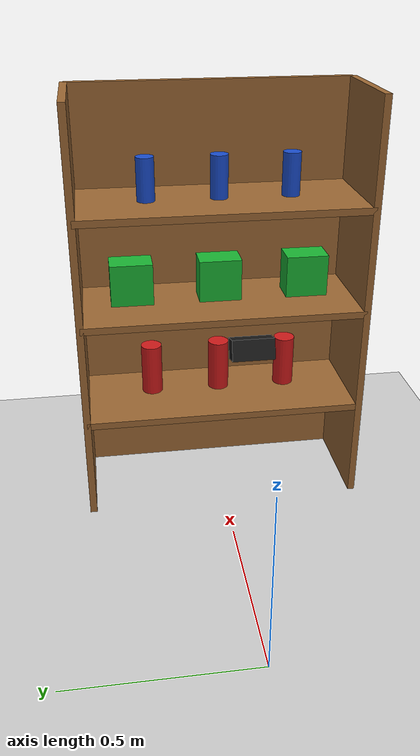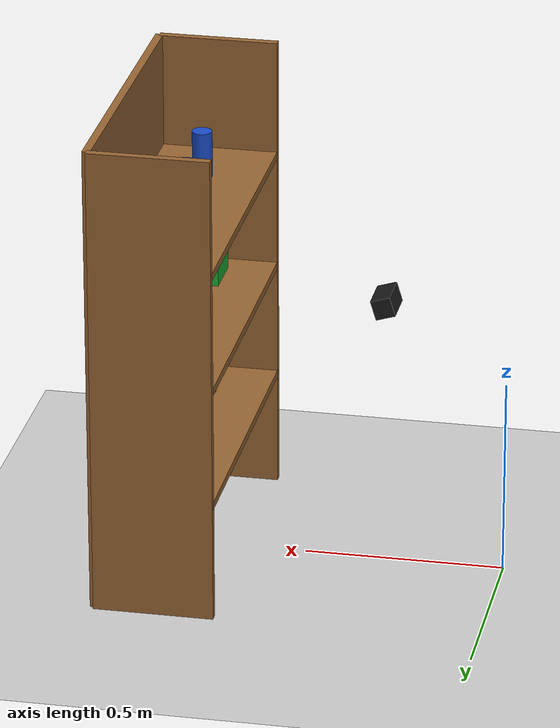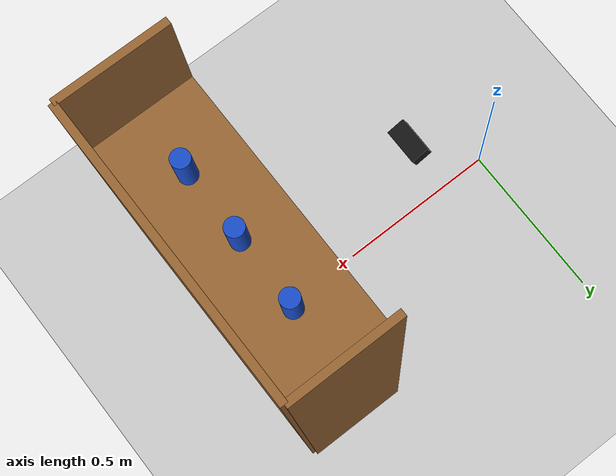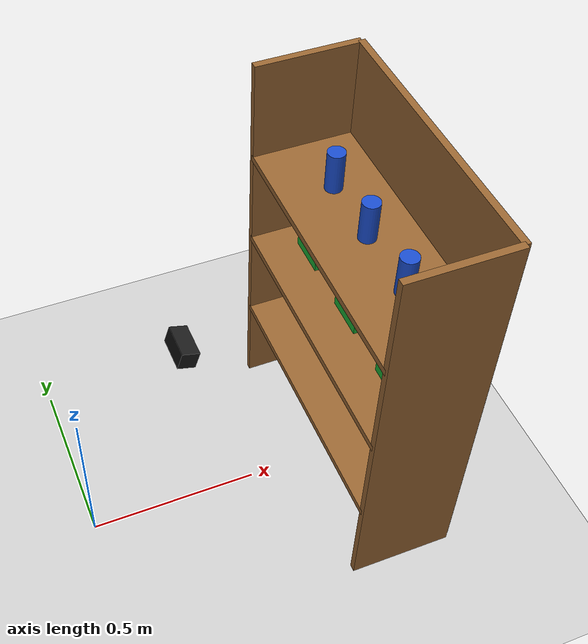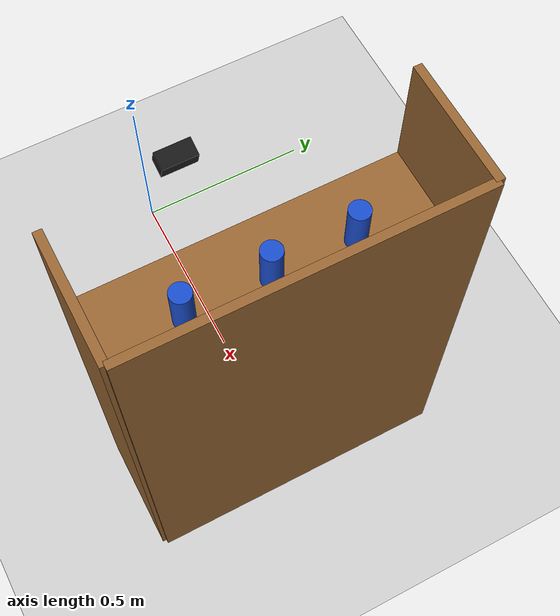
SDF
<?xml version="1.0" ?>
<sdf version="1.6">
  <world name="shelf_world">

    <!-- Lighting -->
    <include>
      <uri>model://sun</uri>
    </include>

    <!-- Ground plane -->
    <include>
      <uri>model://ground_plane</uri>
    </include>

    <!-- Shelf structure -->
    <model name="shelf">
      <static>true</static>
      <pose>0.8 0 0 0 0 0</pose>

      <!-- Back panel -->
      <link name="back_panel">
        <pose>0.15 0 0.6 0 0 0</pose>
        <visual name="visual">
          <geometry>
            <box><size>0.02 0.8 1.2</size></box>
          </geometry>
          <material>
            <ambient>0.6 0.4 0.2 1</ambient>
            <diffuse>0.6 0.4 0.2 1</diffuse>
          </material>
        </visual>
        <collision name="collision">
          <geometry>
            <box><size>0.02 0.8 1.2</size></box>
          </geometry>
        </collision>
      </link>

      <!-- Bottom shelf -->
      <link name="shelf_bottom">
        <pose>0 0 0.3 0 0 0</pose>
        <visual name="visual">
          <geometry>
            <box><size>0.3 0.8 0.02</size></box>
          </geometry>
          <material>
            <ambient>0.6 0.4 0.2 1</ambient>
            <diffuse>0.6 0.4 0.2 1</diffuse>
          </material>
        </visual>
        <collision name="collision">
          <geometry>
            <box><size>0.3 0.8 0.02</size></box>
          </geometry>
        </collision>
      </link>

      <!-- Middle shelf -->
      <link name="shelf_middle">
        <pose>0 0 0.6 0 0 0</pose>
        <visual name="visual">
          <geometry>
            <box><size>0.3 0.8 0.02</size></box>
          </geometry>
          <material>
            <ambient>0.6 0.4 0.2 1</ambient>
            <diffuse>0.6 0.4 0.2 1</diffuse>
          </material>
        </visual>
        <collision name="collision">
          <geometry>
            <box><size>0.3 0.8 0.02</size></box>
          </geometry>
        </collision>
      </link>

      <!-- Top shelf -->
      <link name="shelf_top">
        <pose>0 0 0.9 0 0 0</pose>
        <visual name="visual">
          <geometry>
            <box><size>0.3 0.8 0.02</size></box>
          </geometry>
          <material>
            <ambient>0.6 0.4 0.2 1</ambient>
            <diffuse>0.6 0.4 0.2 1</diffuse>
          </material>
        </visual>
        <collision name="collision">
          <geometry>
            <box><size>0.3 0.8 0.02</size></box>
          </geometry>
        </collision>
      </link>

      <!-- Left side panel -->
      <link name="left_panel">
        <pose>0 -0.4 0.6 0 0 0</pose>
        <visual name="visual">
          <geometry>
            <box><size>0.3 0.02 1.2</size></box>
          </geometry>
          <material>
            <ambient>0.6 0.4 0.2 1</ambient>
            <diffuse>0.6 0.4 0.2 1</diffuse>
          </material>
        </visual>
        <collision name="collision">
          <geometry>
            <box><size>0.3 0.02 1.2</size></box>
          </geometry>
        </collision>
      </link>

      <!-- Right side panel -->
      <link name="right_panel">
        <pose>0 0.4 0.6 0 0 0</pose>
        <visual name="visual">
          <geometry>
            <box><size>0.3 0.02 1.2</size></box>
          </geometry>
          <material>
            <ambient>0.6 0.4 0.2 1</ambient>
            <diffuse>0.6 0.4 0.2 1</diffuse>
          </material>
        </visual>
        <collision name="collision">
          <geometry>
            <box><size>0.3 0.02 1.2</size></box>
          </geometry>
        </collision>
      </link>
    </model>

    <!-- Products on bottom shelf (red bottles) -->
    <model name="bottle_red_1">
      <pose>0.8 -0.2 0.4 0 0 0</pose>
      <static>false</static>
      <link name="link">
        <inertial>
          <mass>0.3</mass>
          <inertia>
            <ixx>0.0005</ixx><iyy>0.0005</iyy><izz>0.0002</izz>
            <ixy>0</ixy><ixz>0</ixz><iyz>0</iyz>
          </inertia>
        </inertial>
        <visual name="visual">
          <geometry>
            <cylinder><radius>0.03</radius><length>0.15</length></cylinder>
          </geometry>
          <material>
            <ambient>0.8 0.1 0.1 1</ambient>
            <diffuse>0.8 0.1 0.1 1</diffuse>
          </material>
        </visual>
        <collision name="collision">
          <geometry>
            <cylinder><radius>0.03</radius><length>0.15</length></cylinder>
          </geometry>
        </collision>
      </link>
    </model>

    <model name="bottle_red_2">
      <pose>0.8 0 0.4 0 0 0</pose>
      <static>false</static>
      <link name="link">
        <inertial>
          <mass>0.3</mass>
          <inertia>
            <ixx>0.0005</ixx><iyy>0.0005</iyy><izz>0.0002</izz>
            <ixy>0</ixy><ixz>0</ixz><iyz>0</iyz>
          </inertia>
        </inertial>
        <visual name="visual">
          <geometry>
            <cylinder><radius>0.03</radius><length>0.15</length></cylinder>
          </geometry>
          <material>
            <ambient>0.8 0.1 0.1 1</ambient>
            <diffuse>0.8 0.1 0.1 1</diffuse>
          </material>
        </visual>
        <collision name="collision">
          <geometry>
            <cylinder><radius>0.03</radius><length>0.15</length></cylinder>
          </geometry>
        </collision>
      </link>
    </model>

    <model name="bottle_red_3">
      <pose>0.8 0.2 0.4 0 0 0</pose>
      <static>false</static>
      <link name="link">
        <inertial>
          <mass>0.3</mass>
          <inertia>
            <ixx>0.0005</ixx><iyy>0.0005</iyy><izz>0.0002</izz>
            <ixy>0</ixy><ixz>0</ixz><iyz>0</iyz>
          </inertia>
        </inertial>
        <visual name="visual">
          <geometry>
            <cylinder><radius>0.03</radius><length>0.15</length></cylinder>
          </geometry>
          <material>
            <ambient>0.8 0.1 0.1 1</ambient>
            <diffuse>0.8 0.1 0.1 1</diffuse>
          </material>
        </visual>
        <collision name="collision">
          <geometry>
            <cylinder><radius>0.03</radius><length>0.15</length></cylinder>
          </geometry>
        </collision>
      </link>
    </model>

    <!-- Products on middle shelf (green boxes - snacks) -->
    <model name="box_green_1">
      <pose>0.8 -0.25 0.68 0 0 0</pose>
      <static>false</static>
      <link name="link">
        <inertial>
          <mass>0.2</mass>
          <inertia>
            <ixx>0.0003</ixx><iyy>0.0003</iyy><izz>0.0003</izz>
            <ixy>0</ixy><ixz>0</ixz><iyz>0</iyz>
          </inertia>
        </inertial>
        <visual name="visual">
          <geometry>
            <box><size>0.08 0.12 0.12</size></box>
          </geometry>
          <material>
            <ambient>0.1 0.7 0.2 1</ambient>
            <diffuse>0.1 0.7 0.2 1</diffuse>
          </material>
        </visual>
        <collision name="collision">
          <geometry>
            <box><size>0.08 0.12 0.12</size></box>
          </geometry>
        </collision>
      </link>
    </model>

    <model name="box_green_2">
      <pose>0.8 0 0.68 0 0 0</pose>
      <static>false</static>
      <link name="link">
        <inertial>
          <mass>0.2</mass>
          <inertia>
            <ixx>0.0003</ixx><iyy>0.0003</iyy><izz>0.0003</izz>
            <ixy>0</ixy><ixz>0</ixz><iyz>0</iyz>
          </inertia>
        </inertial>
        <visual name="visual">
          <geometry>
            <box><size>0.08 0.12 0.12</size></box>
          </geometry>
          <material>
            <ambient>0.1 0.7 0.2 1</ambient>
            <diffuse>0.1 0.7 0.2 1</diffuse>
          </material>
        </visual>
        <collision name="collision">
          <geometry>
            <box><size>0.08 0.12 0.12</size></box>
          </geometry>
        </collision>
      </link>
    </model>

    <model name="box_green_3">
      <pose>0.8 0.25 0.68 0 0 0</pose>
      <static>false</static>
      <link name="link">
        <inertial>
          <mass>0.2</mass>
          <inertia>
            <ixx>0.0003</ixx><iyy>0.0003</iyy><izz>0.0003</izz>
            <ixy>0</ixy><ixz>0</ixz><iyz>0</iyz>
          </inertia>
        </inertial>
        <visual name="visual">
          <geometry>
            <box><size>0.08 0.12 0.12</size></box>
          </geometry>
          <material>
            <ambient>0.1 0.7 0.2 1</ambient>
            <diffuse>0.1 0.7 0.2 1</diffuse>
          </material>
        </visual>
        <collision name="collision">
          <geometry>
            <box><size>0.08 0.12 0.12</size></box>
          </geometry>
        </collision>
      </link>
    </model>

    <!-- Products on top shelf (blue cans) -->
    <model name="can_blue_1">
      <pose>0.8 -0.2 0.97 0 0 0</pose>
      <static>false</static>
      <link name="link">
        <inertial>
          <mass>0.35</mass>
          <inertia>
            <ixx>0.0004</ixx><iyy>0.0004</iyy><izz>0.0002</izz>
            <ixy>0</ixy><ixz>0</ixz><iyz>0</iyz>
          </inertia>
        </inertial>
        <visual name="visual">
          <geometry>
            <cylinder><radius>0.025</radius><length>0.12</length></cylinder>
          </geometry>
          <material>
            <ambient>0.1 0.3 0.8 1</ambient>
            <diffuse>0.1 0.3 0.8 1</diffuse>
          </material>
        </visual>
        <collision name="collision">
          <geometry>
            <cylinder><radius>0.025</radius><length>0.12</length></cylinder>
          </geometry>
        </collision>
      </link>
    </model>

    <model name="can_blue_2">
      <pose>0.8 0 0.97 0 0 0</pose>
      <static>false</static>
      <link name="link">
        <inertial>
          <mass>0.35</mass>
          <inertia>
            <ixx>0.0004</ixx><iyy>0.0004</iyy><izz>0.0002</izz>
            <ixy>0</ixy><ixz>0</ixz><iyz>0</iyz>
          </inertia>
        </inertial>
        <visual name="visual">
          <geometry>
            <cylinder><radius>0.025</radius><length>0.12</length></cylinder>
          </geometry>
          <material>
            <ambient>0.1 0.3 0.8 1</ambient>
            <diffuse>0.1 0.3 0.8 1</diffuse>
          </material>
        </visual>
        <collision name="collision">
          <geometry>
            <cylinder><radius>0.025</radius><length>0.12</length></cylinder>
          </geometry>
        </collision>
      </link>
    </model>

    <model name="can_blue_3">
      <pose>0.8 0.2 0.97 0 0 0</pose>
      <static>false</static>
      <link name="link">
        <inertial>
          <mass>0.35</mass>
          <inertia>
            <ixx>0.0004</ixx><iyy>0.0004</iyy><izz>0.0002</izz>
            <ixy>0</ixy><ixz>0</ixz><iyz>0</iyz>
          </inertia>
        </inertial>
        <visual name="visual">
          <geometry>
            <cylinder><radius>0.025</radius><length>0.12</length></cylinder>
          </geometry>
          <material>
            <ambient>0.1 0.3 0.8 1</ambient>
            <diffuse>0.1 0.3 0.8 1</diffuse>
          </material>
        </visual>
        <collision name="collision">
          <geometry>
            <cylinder><radius>0.025</radius><length>0.12</length></cylinder>
          </geometry>
        </collision>
      </link>
    </model>

    <!-- Fixed camera looking at shelf (for perception demo) -->
    <model name="fixed_camera">
      <static>true</static>
      <pose>0.3 0 0.7 0 0.3 0</pose>  <!-- Position looking at middle shelf -->
      <link name="camera_link">
        <visual name="visual">
          <geometry>
            <box><size>0.05 0.1 0.05</size></box>
          </geometry>
          <material>
            <ambient>0.1 0.1 0.1 1</ambient>
            <diffuse>0.1 0.1 0.1 1</diffuse>
          </material>
        </visual>
        <sensor type="camera" name="fixed_shelf_camera">
          <update_rate>30.0</update_rate>
          <camera name="shelf_cam">
            <horizontal_fov>1.2</horizontal_fov>
            <image>
              <width>640</width>
              <height>480</height>
              <format>R8G8B8</format>
            </image>
            <clip>
              <near>0.02</near>
              <far>10</far>
            </clip>
          </camera>
          <plugin name="shelf_camera_controller" filename="libgazebo_ros_camera.so">
            <ros>
              <namespace>/</namespace>
            </ros>
            <camera_name>shelf_camera</camera_name>
            <frame_name>shelf_camera_frame</frame_name>
          </plugin>
        </sensor>
      </link>
    </model>

  </world>
</sdf>
